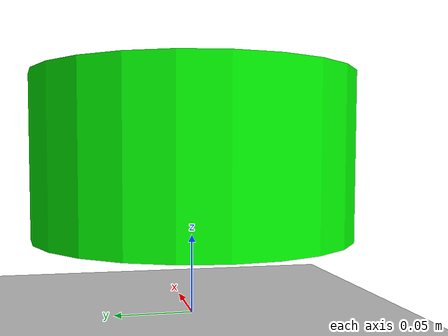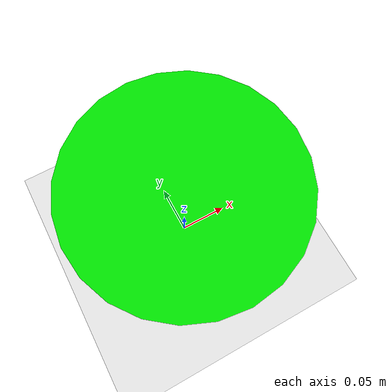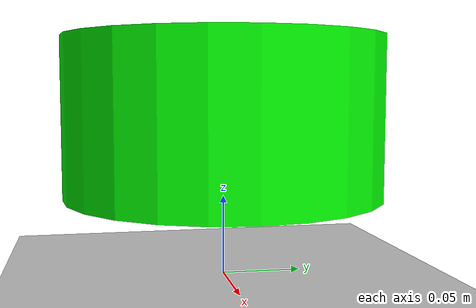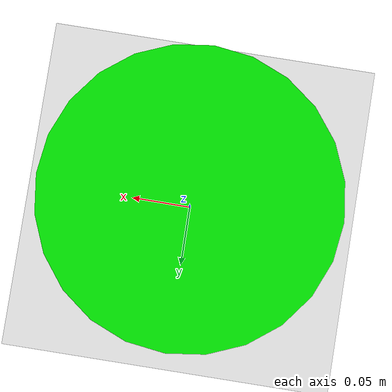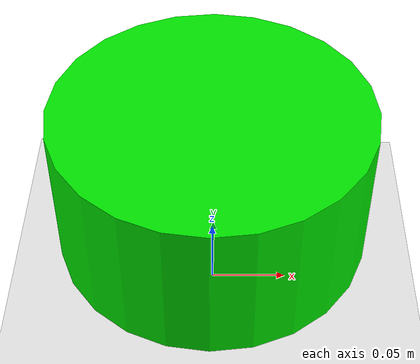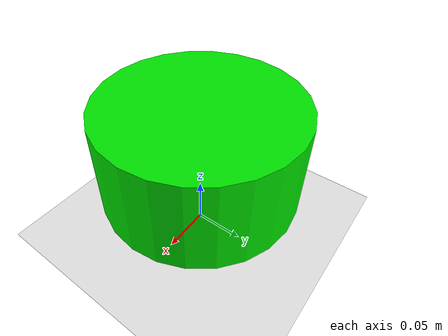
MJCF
<mujoco model="robot">
  <worldbody>
    <light diffuse=".5 .5 .5" pos="0 0 3" dir="0 0 -1"/>
    <geom type="plane" size="1 1 0.1" rgba=".9 .9 .9 1"/>
    <body name="robot" pos="0 0 0.1">
      <joint type="free"/>
      <geom type="cylinder" size="0.1 0.05" rgba="0 .9 0 1"/>
    </body>
  </worldbody>
  <actuator>
    <motor joint="robot:root" gear="1 1 0 0 0 0" ctrllimited="true" ctrlrange="-1 1"/>
  </actuator>
</mujoco>
